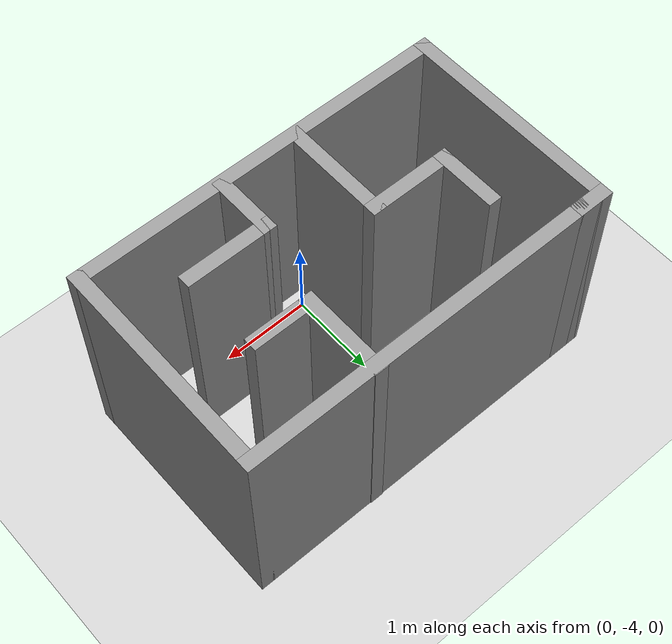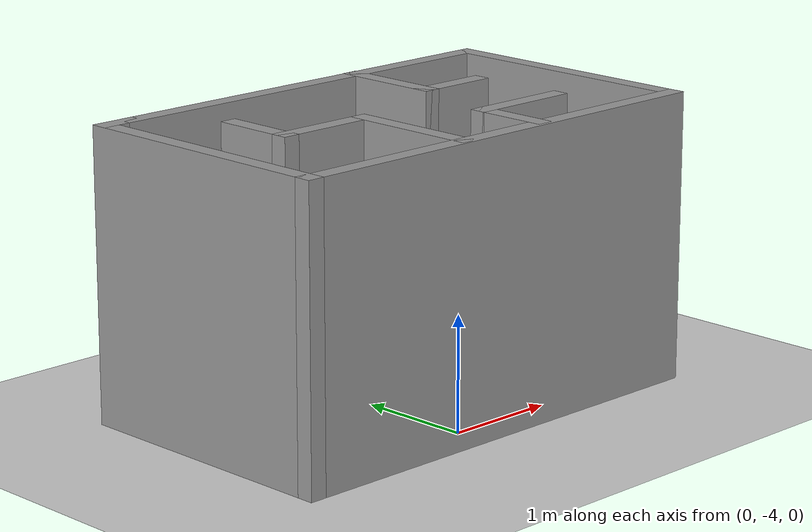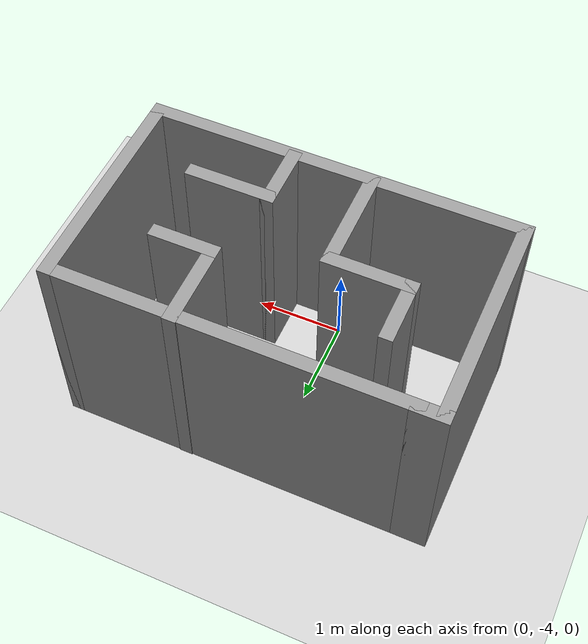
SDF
<sdf version="1.7">
 <world name="default">
  <light name="sun" type="directional">
   <pose>0 0 10 0 -0 0</pose>
   <diffuse>0.8 0.8 0.8 1</diffuse>
   <specular>0.2 0.2 0.2 1</specular>
   <attenuation>
    <range>1000</range>
    <constant>0.9</constant>
    <linear>0.01</linear>
    <quadratic>0.001</quadratic>
   </attenuation>
   <direction>-0.5 0.1 -0.9</direction>
   <spot><inner_angle>0</inner_angle><outer_angle>0</outer_angle><falloff>0</falloff></spot>
  </light>
  <model name="ground_plane">
   <static>1</static>
   <link name="link">
    <collision name="collision">
     <geometry><plane><normal>0 0 1</normal><size>100 100</size></plane></geometry>
     <surface>
      <contact><collide_bitmask>65535</collide_bitmask></contact>
      <friction><ode><mu>100</mu><mu2>50</mu2></ode></friction>
     </surface>
    </collision>
    <visual name="visual">
     <cast_shadows>0</cast_shadows>
     <geometry><plane><normal>0 0 1</normal><size>100 100</size></plane></geometry>
     <material>
      <script><uri>file://media/materials/scripts/gazebo.material</uri><name>Gazebo/Grey</name></script>
     </material>
    </visual>
   </link>
  </model>
  <gravity>0 0 -9.8</gravity>
  <magnetic_field>6e-06 2.3e-05 -4.2e-05</magnetic_field>
  <atmosphere type="adiabatic"/>
  <physics type="ode">
   <max_step_size>0.001</max_step_size>
   <real_time_factor>1</real_time_factor>
   <real_time_update_rate>1000</real_time_update_rate>
  </physics>
  <scene><ambient>0.4 0.4 0.4 1</ambient><background>0.7 0.7 0.7 1</background><shadows>1</shadows></scene>
  <audio><device>default</device></audio>
  <spherical_coordinates>
   <surface_model>EARTH_WGS84</surface_model>
   <latitude_deg>0</latitude_deg>
   <longitude_deg>0</longitude_deg>
   <elevation>0</elevation>
   <heading_deg>0</heading_deg>
  </spherical_coordinates>
  <model name="Untitled">
   <pose>0.22 -2.1575 0 0 -0 0</pose>
   <link name="Wall_0">
    <collision name="Wall_0_Collision">
     <geometry><box><size>4 0.15 2.5</size></box></geometry>
     <pose>0 0 1.25 0 -0 0</pose>
    </collision>
    <visual name="Wall_0_Visual">
     <pose>0 0 1.25 0 -0 0</pose>
     <geometry><box><size>4 0.15 2.5</size></box></geometry>
     <material>
      <script><uri>file://media/materials/scripts/gazebo.material</uri><name>Gazebo/Grey</name></script>
      <ambient>1 1 1 1</ambient>
     </material>
     <meta><layer>0</layer></meta>
    </visual>
    <pose>0.125 0.2675 0 0 -0 0</pose>
   </link>
   <link name="Wall_1">
    <collision name="Wall_1_Collision">
     <geometry><box><size>2.5 0.15 2.5</size></box></geometry>
     <pose>0 0 1.25 0 -0 0</pose>
    </collision>
    <visual name="Wall_1_Visual">
     <pose>0 0 1.25 0 -0 0</pose>
     <geometry><box><size>2.5 0.15 2.5</size></box></geometry>
     <material>
      <script><uri>file://media/materials/scripts/gazebo.material</uri><name>Gazebo/Grey</name></script>
      <ambient>1 1 1 1</ambient>
     </material>
     <meta><layer>0</layer></meta>
    </visual>
    <pose>2.05 -0.9075 0 0 -0 -1.5708</pose>
   </link>
   <link name="Wall_11">
    <collision name="Wall_11_Collision">
     <geometry><box><size>1.25 0.15 2.5</size></box></geometry>
     <pose>0 0 1.25 0 -0 0</pose>
    </collision>
    <visual name="Wall_11_Visual">
     <pose>0 0 1.25 0 -0 0</pose>
     <geometry><box><size>1.25 0.15 2.5</size></box></geometry>
     <material>
      <script><uri>file://media/materials/scripts/gazebo.material</uri><name>Gazebo/Grey</name></script>
      <ambient>1 1 1 1</ambient>
     </material>
     <meta><layer>0</layer></meta>
    </visual>
    <pose>-0.408435 -1.50948 0 0 -0 1.5708</pose>
   </link>
   <link name="Wall_12">
    <collision name="Wall_12_Collision">
     <geometry><box><size>1 0.15 2.5</size></box></geometry>
     <pose>0 0 1.25 0 -0 0</pose>
    </collision>
    <visual name="Wall_12_Visual">
     <pose>0 0 1.25 0 -0 0</pose>
     <geometry><box><size>1 0.15 2.5</size></box></geometry>
     <material>
      <script><uri>file://media/materials/scripts/gazebo.material</uri><name>Gazebo/Grey</name></script>
      <ambient>1 1 1 1</ambient>
     </material>
     <meta><layer>0</layer></meta>
    </visual>
    <pose>-0.833435 -0.959478 0 0 -0 3.14159</pose>
   </link>
   <link name="Wall_13">
    <collision name="Wall_13_Collision">
     <geometry><box><size>0.75 0.15 2.5</size></box></geometry>
     <pose>0 0 1.25 0 -0 0</pose>
    </collision>
    <visual name="Wall_13_Visual">
     <pose>0 0 1.25 0 -0 0</pose>
     <geometry><box><size>0.75 0.15 2.5</size></box></geometry>
     <material>
      <script><uri>file://media/materials/scripts/gazebo.material</uri><name>Gazebo/Grey</name></script>
      <ambient>1 1 1 1</ambient>
     </material>
     <meta><layer>0</layer></meta>
    </visual>
    <pose>-1.25843 -0.659478 0 0 -0 1.5708</pose>
   </link>
   <link name="Wall_15">
    <collision name="Wall_15_Collision">
     <geometry><box><size>0.75 0.15 2.5</size></box></geometry>
     <pose>0 0 1.25 0 -0 0</pose>
    </collision>
    <visual name="Wall_15_Visual">
     <pose>0 0 1.25 0 -0 0</pose>
     <geometry><box><size>0.75 0.15 2.5</size></box></geometry>
     <material>
      <script><uri>file://media/materials/scripts/gazebo.material</uri><name>Gazebo/Grey</name></script>
      <ambient>1 1 1 1</ambient>
     </material>
     <meta><layer>0</layer></meta>
    </visual>
    <pose>0.465565 -1.74798 0 0 -0 1.5708</pose>
   </link>
   <link name="Wall_16">
    <collision name="Wall_16_Collision">
     <geometry><box><size>1 0.15 2.5</size></box></geometry>
     <pose>0 0 1.25 0 -0 0</pose>
    </collision>
    <visual name="Wall_16_Visual">
     <pose>0 0 1.25 0 -0 0</pose>
     <geometry><box><size>1 0.15 2.5</size></box></geometry>
     <material>
      <script><uri>file://media/materials/scripts/gazebo.material</uri><name>Gazebo/Grey</name></script>
      <ambient>1 1 1 1</ambient>
     </material>
     <meta><layer>0</layer></meta>
    </visual>
    <pose>0.890565 -1.44798 0 0 -0 0</pose>
   </link>
   <link name="Wall_2">
    <collision name="Wall_2_Collision">
     <geometry><box><size>4.25 0.15 2.5</size></box></geometry>
     <pose>0 0 1.25 0 -0 0</pose>
    </collision>
    <visual name="Wall_2_Visual">
     <pose>0 0 1.25 0 -0 0</pose>
     <geometry><box><size>4.25 0.15 2.5</size></box></geometry>
     <material>
      <script><uri>file://media/materials/scripts/gazebo.material</uri><name>Gazebo/Grey</name></script>
      <ambient>1 1 1 1</ambient>
     </material>
     <meta><layer>0</layer></meta>
    </visual>
    <pose>0 -2.0825 0 0 -0 3.14159</pose>
   </link>
   <link name="Wall_3">
    <collision name="Wall_3_Collision">
     <geometry><box><size>2.5 0.15 2.5</size></box></geometry>
     <pose>0 0 1.25 0 -0 0</pose>
    </collision>
    <visual name="Wall_3_Visual">
     <pose>0 0 1.25 0 -0 0</pose>
     <geometry><box><size>2.5 0.15 2.5</size></box></geometry>
     <material>
      <script><uri>file://media/materials/scripts/gazebo.material</uri><name>Gazebo/Grey</name></script>
      <ambient>1 1 1 1</ambient>
     </material>
     <meta><layer>0</layer></meta>
    </visual>
    <pose>-2.05 -0.9075 0 0 -0 1.5708</pose>
   </link>
   <link name="Wall_4">
    <collision name="Wall_4_Collision">
     <geometry><box><size>0.4 0.15 2.5</size></box></geometry>
     <pose>0 0 1.25 0 -0 0</pose>
    </collision>
    <visual name="Wall_4_Visual">
     <pose>0 0 1.25 0 -0 0</pose>
     <geometry><box><size>0.4 0.15 2.5</size></box></geometry>
     <material>
      <script><uri>file://media/materials/scripts/gazebo.material</uri><name>Gazebo/Grey</name></script>
      <ambient>1 1 1 1</ambient>
     </material>
     <meta><layer>0</layer></meta>
    </visual>
    <pose>-1.925 0.2675 0 0 -0 0</pose>
   </link>
   <link name="Wall_8">
    <collision name="Wall_8_Collision">
     <geometry><box><size>1 0.15 2.5</size></box></geometry>
     <pose>0 0 1.25 0 -0 0</pose>
    </collision>
    <visual name="Wall_8_Visual">
     <pose>0 0 1.25 0 -0 0</pose>
     <geometry><box><size>1 0.15 2.5</size></box></geometry>
     <material>
      <script><uri>file://media/materials/scripts/gazebo.material</uri><name>Gazebo/Grey</name></script>
      <ambient>1 1 1 1</ambient>
     </material>
     <meta><layer>0</layer></meta>
    </visual>
    <pose>0.684065 -0.149978 0 0 -0 -1.5708</pose>
   </link>
   <link name="Wall_9">
    <collision name="Wall_9_Collision">
     <geometry><box><size>0.75 0.15 2.5</size></box></geometry>
     <pose>0 0 1.25 0 -0 0</pose>
    </collision>
    <visual name="Wall_9_Visual">
     <pose>0 0 1.25 0 -0 0</pose>
     <geometry><box><size>0.75 0.15 2.5</size></box></geometry>
     <material>
      <script><uri>file://media/materials/scripts/gazebo.material</uri><name>Gazebo/Grey</name></script>
      <ambient>1 1 1 1</ambient>
     </material>
     <meta><layer>0</layer></meta>
    </visual>
    <pose>0.984065 -0.574978 0 0 -0 0</pose>
   </link>
   <static>1</static>
  </model>
  <model name="fishbot">
   <link name="base_footprint">
    <inertial>
     <pose>0.000922 0 0.096143 0 -0 0</pose>
     <mass>2.17</mass>
     <inertia>
      <ixx>0.00937083</ixx>
      <ixy>0</ixy>
      <ixz>-0.000139714</ixz>
      <iyy>0.00982498</iyy>
      <iyz>0</iyz>
      <izz>0.0104728</izz>
     </inertia>
    </inertial>
    <collision name="base_footprint_fixed_joint_lump__base_link_collision">
     <pose>0 0 0.091 0 -0 0</pose>
     <geometry><cylinder><length>0.12</length><radius>0.1</radius></cylinder></geometry>
    </collision>
    <collision name="base_footprint_fixed_joint_lump__back_caster_link_collision_1">
     <pose>-0.08 0 0.015 0 -0 0</pose>
     <geometry><sphere><radius>0.016</radius></sphere></geometry>
     <surface>
      <contact><ode><kp>1000</kp><kd>1</kd></ode></contact>
      <friction><ode><mu>0</mu><mu2>0</mu2></ode></friction>
     </surface>
    </collision>
    <collision name="base_footprint_fixed_joint_lump__camera_link_collision_2">
     <pose>0.1 0 0.166 0 -0 0</pose>
     <geometry><box><size>0.02 0.02 0.02</size></box></geometry>
    </collision>
    <collision name="base_footprint_fixed_joint_lump__front_caster_link_collision_3">
     <pose>0.08 0 0.015 0 -0 0</pose>
     <geometry><sphere><radius>0.016</radius></sphere></geometry>
     <surface>
      <contact><ode><kp>1000</kp><kd>1</kd></ode></contact>
      <friction><ode><mu>0</mu><mu2>0</mu2></ode></friction>
     </surface>
    </collision>
    <collision name="base_footprint_fixed_joint_lump__imu_link_collision_4">
     <pose>0 0 0.111 0 -0 0</pose>
     <geometry><box><size>0.02 0.02 0.02</size></box></geometry>
    </collision>
    <collision name="base_footprint_fixed_joint_lump__laser_cylinder_link_collision_5">
     <pose>0 0 0.191 0 -0 0</pose>
     <geometry><cylinder><length>0.1</length><radius>0.01</radius></cylinder></geometry>
    </collision>
    <collision name="base_footprint_fixed_joint_lump__laser_link_collision_6">
     <pose>0 0 0.241 0 -0 0</pose>
     <geometry><cylinder><length>0.02</length><radius>0.02</radius></cylinder></geometry>
    </collision>
    <visual name="base_footprint_fixed_joint_lump__base_link_visual">
     <pose>0 0 0.091 0 -0 0</pose>
     <geometry><cylinder><length>0.12</length><radius>0.1</radius></cylinder></geometry>
    </visual>
    <visual name="base_footprint_fixed_joint_lump__back_caster_link_visual_1">
     <pose>-0.08 0 0.015 0 -0 0</pose>
     <geometry><sphere><radius>0.016</radius></sphere></geometry>
    </visual>
    <visual name="base_footprint_fixed_joint_lump__camera_link_visual_2">
     <pose>0.1 0 0.166 0 -0 0</pose>
     <geometry><box><size>0.02 0.02 0.02</size></box></geometry>
    </visual>
    <visual name="base_footprint_fixed_joint_lump__front_caster_link_visual_3">
     <pose>0.08 0 0.015 0 -0 0</pose>
     <geometry><sphere><radius>0.016</radius></sphere></geometry>
    </visual>
    <visual name="base_footprint_fixed_joint_lump__imu_link_visual_4">
     <pose>0 0 0.111 0 -0 0</pose>
     <geometry><box><size>0.02 0.02 0.02</size></box></geometry>
    </visual>
    <visual name="base_footprint_fixed_joint_lump__laser_cylinder_link_visual_5">
     <pose>0 0 0.191 0 -0 0</pose>
     <geometry><cylinder><length>0.1</length><radius>0.01</radius></cylinder></geometry>
     <material>
      <script><name>Gazebo/Black</name><uri>file://media/materials/scripts/gazebo.material</uri></script>
     </material>
    </visual>
    <visual name="base_footprint_fixed_joint_lump__laser_link_visual_6">
     <pose>0 0 0.241 0 -0 0</pose>
     <geometry><cylinder><length>0.02</length><radius>0.02</radius></cylinder></geometry>
     <material>
      <script><name>Gazebo/Black</name><uri>file://media/materials/scripts/gazebo.material</uri></script>
     </material>
    </visual>
    <sensor name="laserscan" type="ray">
     <always_on>1</always_on>
     <update_rate>5</update_rate>
     <visualize>1</visualize>
     <ray>
      <scan>
       <horizontal>
        <samples>360</samples>
        <resolution>1</resolution>
        <min_angle>0</min_angle>
        <max_angle>6.28</max_angle>
       </horizontal>
       <vertical><samples>1</samples><min_angle>0</min_angle><max_angle>0</max_angle></vertical>
      </scan>
      <range><min>0.12</min><max>8</max><resolution>0.015</resolution></range>
     </ray>
     <plugin name="laserscan" filename="libgazebo_ros_ray_sensor.so">
      <ros><remapping>~/out:=scan</remapping></ros>
      <output_type>sensor_msgs/LaserScan</output_type>
     </plugin>
     <pose>0 0 0.241 0 -0 0</pose>
     <frame_name>laser_link</frame_name>
    </sensor>
   </link>
   <joint name="left_wheel_joint" type="revolute">
    <pose relative_to="base_footprint">0 0.1 0.031 0 -0 0</pose>
    <parent>base_footprint</parent>
    <child>left_wheel_link</child>
    <axis>
     <xyz>0 1 0</xyz>
     <limit><lower>-1e+16</lower><upper>1e+16</upper></limit>
     <dynamics><spring_reference>0</spring_reference><spring_stiffness>0</spring_stiffness></dynamics>
    </axis>
   </joint>
   <link name="left_wheel_link">
    <pose relative_to="left_wheel_joint">0 0 0 0 -0 0</pose>
    <inertial>
     <mass>0.1</mass>
     <inertia>
      <ixx>3.89333e-05</ixx>
      <ixy>0</ixy>
      <ixz>0</ixz>
      <iyy>3.89333e-05</iyy>
      <iyz>0</iyz>
      <izz>5.12e-05</izz>
     </inertia>
    </inertial>
    <collision name="left_wheel_link_collision">
     <pose>0 0 0 1.57079 -0 0</pose>
     <geometry><cylinder><length>0.04</length><radius>0.032</radius></cylinder></geometry>
     <surface>
      <contact><ode><kp>1e+09</kp><kd>1</kd></ode></contact>
      <friction><ode><mu>20</mu><mu2>20</mu2></ode></friction>
     </surface>
    </collision>
    <visual name="left_wheel_link_visual">
     <pose>0 0 0 1.57079 -0 0</pose>
     <geometry><cylinder><length>0.04</length><radius>0.032</radius></cylinder></geometry>
    </visual>
   </link>
   <joint name="right_wheel_joint" type="revolute">
    <pose relative_to="base_footprint">0 -0.1 0.031 0 -0 0</pose>
    <parent>base_footprint</parent>
    <child>right_wheel_link</child>
    <axis>
     <xyz>0 1 0</xyz>
     <limit><lower>-1e+16</lower><upper>1e+16</upper></limit>
     <dynamics><spring_reference>0</spring_reference><spring_stiffness>0</spring_stiffness></dynamics>
    </axis>
   </joint>
   <link name="right_wheel_link">
    <pose relative_to="right_wheel_joint">0 0 0 0 -0 0</pose>
    <inertial>
     <mass>0.1</mass>
     <inertia>
      <ixx>3.89333e-05</ixx>
      <ixy>0</ixy>
      <ixz>0</ixz>
      <iyy>3.89333e-05</iyy>
      <iyz>0</iyz>
      <izz>5.12e-05</izz>
     </inertia>
    </inertial>
    <collision name="right_wheel_link_collision">
     <pose>0 0 0 1.57079 -0 0</pose>
     <geometry><cylinder><length>0.04</length><radius>0.032</radius></cylinder></geometry>
     <surface>
      <contact><ode><kp>1e+09</kp><kd>1</kd></ode></contact>
      <friction><ode><mu>20</mu><mu2>20</mu2></ode></friction>
     </surface>
    </collision>
    <visual name="right_wheel_link_visual">
     <pose>0 0 0 1.57079 -0 0</pose>
     <geometry><cylinder><length>0.04</length><radius>0.032</radius></cylinder></geometry>
    </visual>
   </link>
   <static>0</static>
   <plugin name="diff_drive" filename="libgazebo_ros_diff_drive.so">
    <update_rate>30</update_rate>
    <left_joint>left_wheel_joint</left_joint>
    <right_joint>right_wheel_joint</right_joint>
    <wheel_separation>0.2</wheel_separation>
    <wheel_diameter>0.064</wheel_diameter>
    <max_wheel_torque>20</max_wheel_torque>
    <max_wheel_acceleration>1.0</max_wheel_acceleration>
    <publish_odom>1</publish_odom>
    <publish_odom_tf>1</publish_odom_tf>
    <publish_wheel_tf>1</publish_wheel_tf>
    <robot_base_frame>base_footprint</robot_base_frame>
    <odometry_frame>odom</odometry_frame>
   </plugin>
   <pose>0.09689 -2.6948 0.002631 1.6e-05 0.325686 0.023708</pose>
  </model>
 </world>
</sdf>
